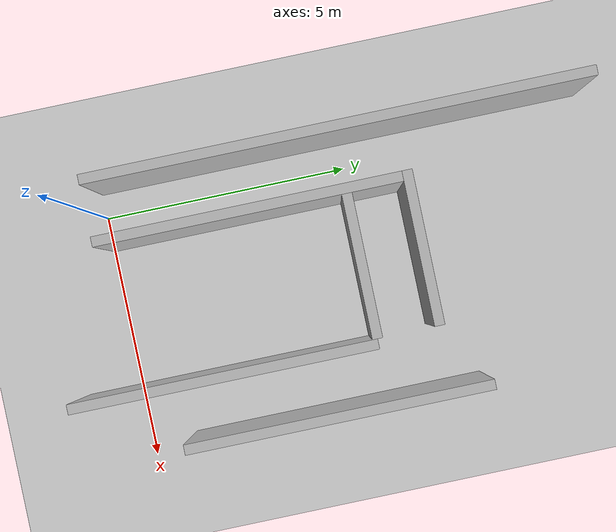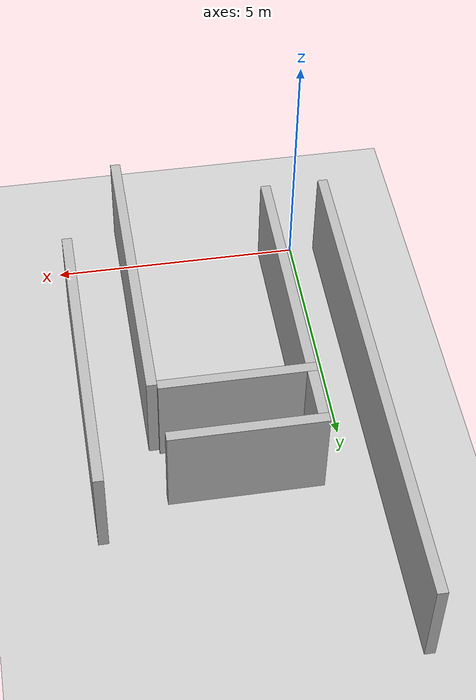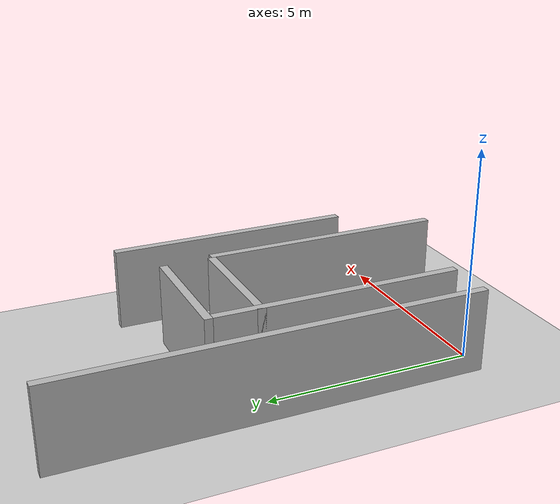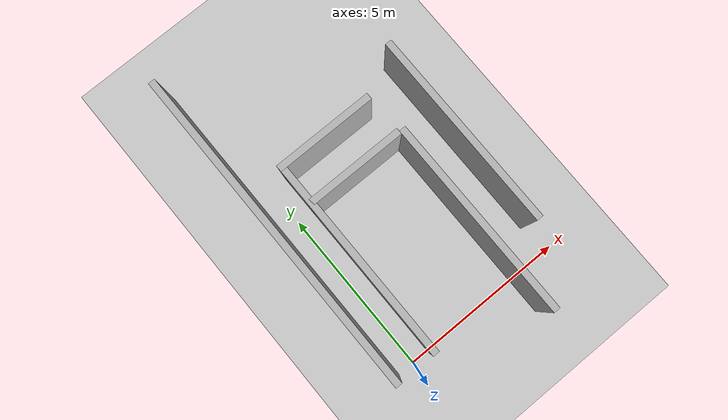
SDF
<?xml version="1.0" ?>
<sdf version="1.8">
  <world name="narrow_corridor">
    <physics name="1ms" type="ignored"><max_step_size>0.001</max_step_size><real_time_factor>1.0</real_time_factor></physics>
    <plugin filename="libignition-gazebo-physics-system.so" name="ignition::gazebo::systems::Physics"/>
    <plugin filename="libignition-gazebo-scene-broadcaster-system.so" name="ignition::gazebo::systems::SceneBroadcaster"/>
    <plugin filename="libignition-gazebo-user-commands-system.so" name="ignition::gazebo::systems::UserCommands"/>
    <plugin filename="libignition-gazebo-sensors-system.so" name="ignition::gazebo::systems::Sensors"><render_engine>ogre</render_engine></plugin>
    <plugin filename="libignition-gazebo-imu-system.so" name="ignition::gazebo::systems::Imu"/>

    <light type="directional" name="sun"><cast_shadows>true</cast_shadows><pose>0 0 10 0 0 0</pose><diffuse>0.8 0.8 0.8 1</diffuse><specular>0.2 0.2 0.2 1</specular><direction>-0.5 0.1 -0.9</direction></light>
    <model name="ground_plane"><static>true</static><link name="link"><collision name="c"><geometry><plane><normal>0 0 1</normal><size>30 30</size></plane></geometry></collision><visual name="v"><geometry><plane><normal>0 0 1</normal><size>30 30</size></plane></geometry><material><ambient>0.8 0.8 0.8 1</ambient><diffuse>0.8 0.8 0.8 1</diffuse></material></visual></link></model>

    <!-- S-Curve Narrow Corridor (1.2m width) -->
    <model name="wall_left_1"><static>true</static><pose>-0.6 5 1 0 0 0</pose><link name="l"><collision name="c"><geometry><box><size>0.2 10 2</size></box></geometry></collision><visual name="v"><geometry><box><size>0.2 10 2</size></box></geometry></visual></link></model>
    <model name="wall_right_1"><static>true</static><pose>0.6 3 1 0 0 0</pose><link name="l"><collision name="c"><geometry><box><size>0.2 6 2</size></box></geometry></collision><visual name="v"><geometry><box><size>0.2 6 2</size></box></geometry></visual></link></model>
    <model name="wall_turn_top"><static>true</static><pose>2.0 6.1 1 0 0 0</pose><link name="l"><collision name="c"><geometry><box><size>3.0 0.2 2</size></box></geometry></collision><visual name="v"><geometry><box><size>3.0 0.2 2</size></box></geometry></visual></link></model>
    <model name="wall_turn_bottom"><static>true</static><pose>2.0 4.9 1 0 0 0</pose><link name="l"><collision name="c"><geometry><box><size>3.0 0.2 2</size></box></geometry></collision><visual name="v"><geometry><box><size>3.0 0.2 2</size></box></geometry></visual></link></model>
    <model name="wall_left_2"><static>true</static><pose>3.6 1.9 1 0 0 0</pose><link name="l"><collision name="c"><geometry><box><size>0.2 6 2</size></box></geometry></collision><visual name="v"><geometry><box><size>0.2 6 2</size></box></geometry></visual></link></model>
    <model name="wall_right_2"><static>true</static><pose>4.8 3.9 1 0 0 0</pose><link name="l"><collision name="c"><geometry><box><size>0.2 6 2</size></box></geometry></collision><visual name="v"><geometry><box><size>0.2 6 2</size></box></geometry></visual></link></model>
  </world>
</sdf>
